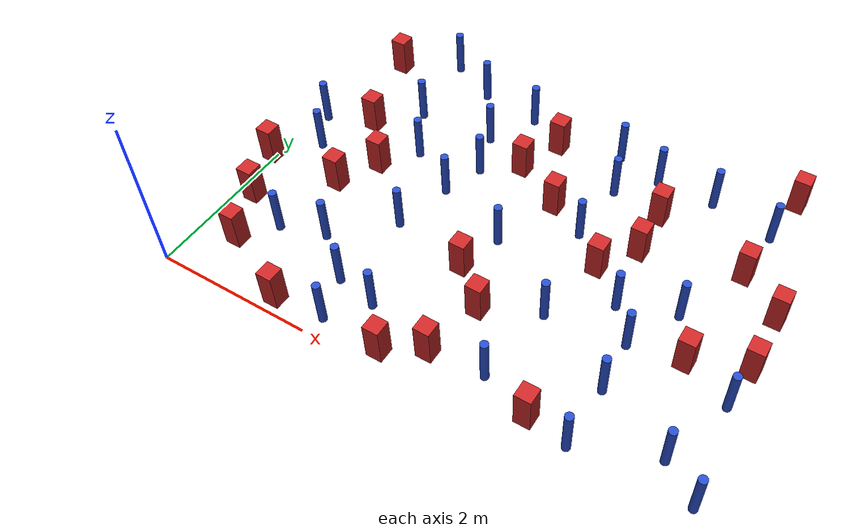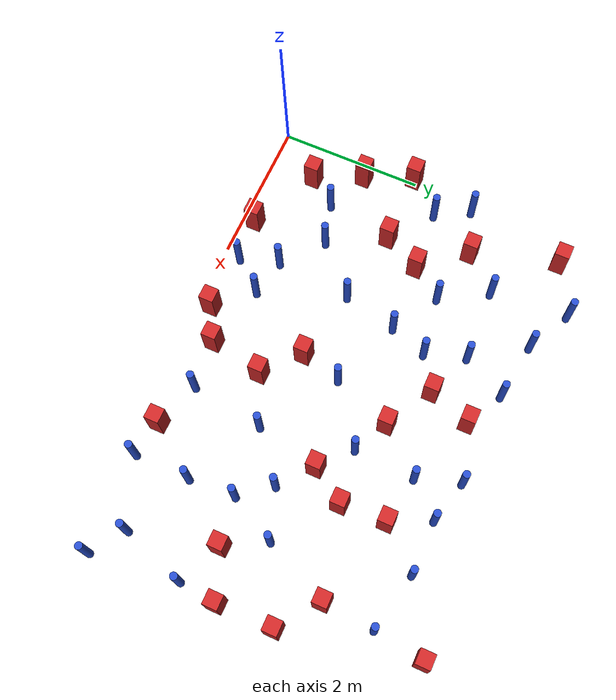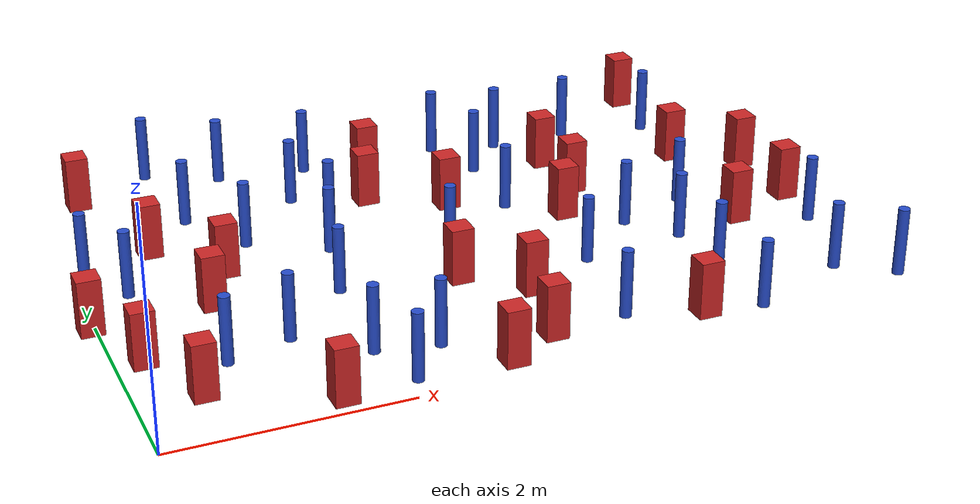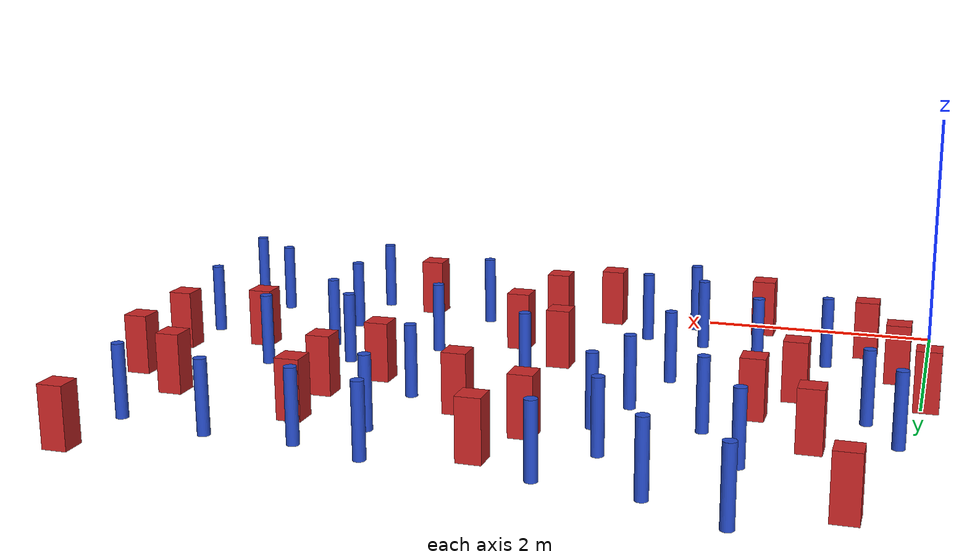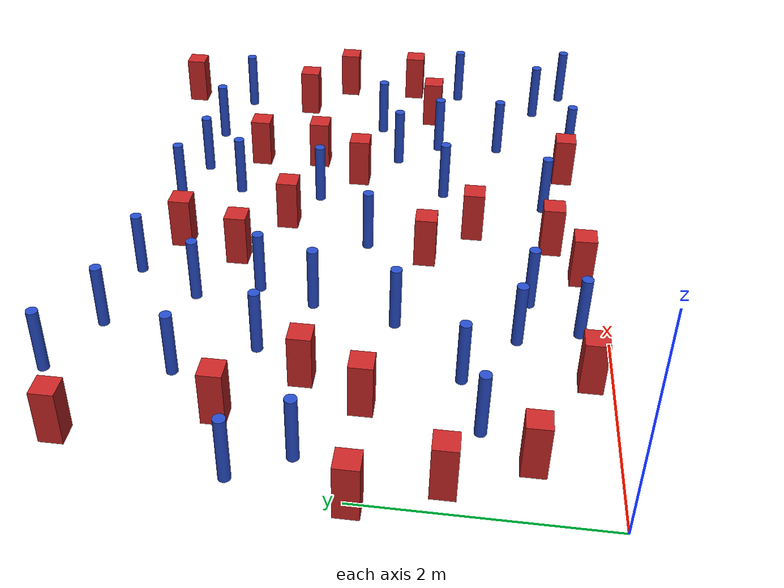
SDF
<sdf version="1.6">
 <model name="dense_41">
  <model name="pole_obstacle1">
   <static>true</static>
   <pose>3.98084149001 3.61252050977 7.38925637345e-09 -8.47170692796e-08 1.24976764765e-08 -1.74513093035e-07</pose>
   <link name="link">
    <pose>0 0 0.3 0 -0 0</pose>
    <inertial>
     <mass>1</mass>
     <inertia><ixx>0.145833</ixx><ixy>0</ixy><ixz>0</ixz><iyy>0.145833</iyy><iyz>0</iyz><izz>0.125</izz></inertia>
    </inertial>
    <collision name="collision">
     <geometry><cylinder><radius>0.05</radius><length>.6</length></cylinder></geometry>
    </collision>
    <visual name="visual">
     <geometry><cylinder><radius>0.05</radius><length>.6</length></cylinder></geometry>
     <material>
      <script><name>Gazebo/Blue</name><uri>file://media/materials/scripts/gazebo.material</uri></script>
     </material>
    </visual>
   </link>
  </model>
  <model name="pole_obstacle3">
   <static>true</static>
   <pose>5.4384488271 2.29469536156 7.38925637345e-09 -8.47170692798e-08 1.24976764937e-08 -1.74513093023e-07</pose>
   <link name="link">
    <pose>0 0 0.3 0 -0 0</pose>
    <inertial>
     <mass>1</mass>
     <inertia><ixx>0.145833</ixx><ixy>0</ixy><ixz>0</ixz><iyy>0.145833</iyy><iyz>0</iyz><izz>0.125</izz></inertia>
    </inertial>
    <collision name="collision">
     <geometry><cylinder><radius>0.05</radius><length>.6</length></cylinder></geometry>
    </collision>
    <visual name="visual">
     <geometry><cylinder><radius>0.05</radius><length>.6</length></cylinder></geometry>
     <material>
      <script><name>Gazebo/Blue</name><uri>file://media/materials/scripts/gazebo.material</uri></script>
     </material>
    </visual>
   </link>
  </model>
  <model name="square_post_obstacle5">
   <static>true</static>
   <pose>0.736631532644 3.10345573629 1.91545236811e-07 -7.35059704564e-06 1.12565212e-07 2.39332434364e-05</pose>
   <link name="link">
    <pose>0 0 0.25 0 -0 0</pose>
    <inertial>
     <mass>100</mass>
     <inertia>
      <ixx>0.166667</ixx>
      <ixy>0</ixy>
      <ixz>0</ixz>
      <iyy>0.166667</iyy>
      <iyz>0</iyz>
      <izz>0.166667</izz>
     </inertia>
    </inertial>
    <collision name="collision"><geometry><box><size>.2 .2 .5</size></box></geometry></collision>
    <visual name="visual">
     <geometry><box><size>.2 .2 .5</size></box></geometry>
     <material>
      <script><name>Gazebo/Red</name><uri>file://media/materials/scripts/gazebo.material</uri></script>
     </material>
    </visual>
   </link>
  </model>
  <model name="pole_obstacle8">
   <static>true</static>
   <pose>4.77809851453 2.05592720037 7.38925637345e-09 -8.47170692798e-08 1.24976764937e-08 -1.74513093023e-07</pose>
   <link name="link">
    <pose>0 0 0.3 0 -0 0</pose>
    <inertial>
     <mass>1</mass>
     <inertia><ixx>0.145833</ixx><ixy>0</ixy><ixz>0</ixz><iyy>0.145833</iyy><iyz>0</iyz><izz>0.125</izz></inertia>
    </inertial>
    <collision name="collision">
     <geometry><cylinder><radius>0.05</radius><length>.6</length></cylinder></geometry>
    </collision>
    <visual name="visual">
     <geometry><cylinder><radius>0.05</radius><length>.6</length></cylinder></geometry>
     <material>
      <script><name>Gazebo/Blue</name><uri>file://media/materials/scripts/gazebo.material</uri></script>
     </material>
    </visual>
   </link>
  </model>
  <model name="pole_obstacle10">
   <static>true</static>
   <pose>1.70992750119 4.33603272903 7.38925637345e-09 -8.47170692799e-08 1.24976765033e-08 -1.74513093018e-07</pose>
   <link name="link">
    <pose>0 0 0.3 0 -0 0</pose>
    <inertial>
     <mass>1</mass>
     <inertia><ixx>0.145833</ixx><ixy>0</ixy><ixz>0</ixz><iyy>0.145833</iyy><iyz>0</iyz><izz>0.125</izz></inertia>
    </inertial>
    <collision name="collision">
     <geometry><cylinder><radius>0.05</radius><length>.6</length></cylinder></geometry>
    </collision>
    <visual name="visual">
     <geometry><cylinder><radius>0.05</radius><length>.6</length></cylinder></geometry>
     <material>
      <script><name>Gazebo/Blue</name><uri>file://media/materials/scripts/gazebo.material</uri></script>
     </material>
    </visual>
   </link>
  </model>
  <model name="pole_obstacle11">
   <static>true</static>
   <pose>1.08762359171 4.64439114261 7.38925637345e-09 -8.47170692799e-08 1.24976765033e-08 -1.74513093018e-07</pose>
   <link name="link">
    <pose>0 0 0.3 0 -0 0</pose>
    <inertial>
     <mass>1</mass>
     <inertia><ixx>0.145833</ixx><ixy>0</ixy><ixz>0</ixz><iyy>0.145833</iyy><iyz>0</iyz><izz>0.125</izz></inertia>
    </inertial>
    <collision name="collision">
     <geometry><cylinder><radius>0.05</radius><length>.6</length></cylinder></geometry>
    </collision>
    <visual name="visual">
     <geometry><cylinder><radius>0.05</radius><length>.6</length></cylinder></geometry>
     <material>
      <script><name>Gazebo/Blue</name><uri>file://media/materials/scripts/gazebo.material</uri></script>
     </material>
    </visual>
   </link>
  </model>
  <model name="square_post_obstacle27">
   <static>true</static>
   <pose>3.01187125218 1.64211949032 1.91545236811e-07 -7.35059704564e-06 1.12565212e-07 2.39332434364e-05</pose>
   <link name="link">
    <pose>0 0 0.25 0 -0 0</pose>
    <inertial>
     <mass>100</mass>
     <inertia>
      <ixx>0.166667</ixx>
      <ixy>0</ixy>
      <ixz>0</ixz>
      <iyy>0.166667</iyy>
      <iyz>0</iyz>
      <izz>0.166667</izz>
     </inertia>
    </inertial>
    <collision name="collision"><geometry><box><size>.2 .2 .5</size></box></geometry></collision>
    <visual name="visual">
     <geometry><box><size>.2 .2 .5</size></box></geometry>
     <material>
      <script><name>Gazebo/Red</name><uri>file://media/materials/scripts/gazebo.material</uri></script>
     </material>
    </visual>
   </link>
  </model>
  <model name="pole_obstacle20">
   <static>true</static>
   <pose>4.3760066803 4.04789300603 7.38925637345e-09 -8.47170692797e-08 1.24976764805e-08 -1.74513093031e-07</pose>
   <link name="link">
    <pose>0 0 0.3 0 -0 0</pose>
    <inertial>
     <mass>1</mass>
     <inertia><ixx>0.145833</ixx><ixy>0</ixy><ixz>0</ixz><iyy>0.145833</iyy><iyz>0</iyz><izz>0.125</izz></inertia>
    </inertial>
    <collision name="collision">
     <geometry><cylinder><radius>0.05</radius><length>.6</length></cylinder></geometry>
    </collision>
    <visual name="visual">
     <geometry><cylinder><radius>0.05</radius><length>.6</length></cylinder></geometry>
     <material>
      <script><name>Gazebo/Blue</name><uri>file://media/materials/scripts/gazebo.material</uri></script>
     </material>
    </visual>
   </link>
  </model>
  <model name="pole_obstacle23">
   <static>true</static>
   <pose>5.12781670834 0.2467637631 7.38925637345e-09 -8.471706928e-08 1.24976765136e-08 -1.74513093014e-07</pose>
   <link name="link">
    <pose>0 0 0.3 0 -0 0</pose>
    <inertial>
     <mass>1</mass>
     <inertia><ixx>0.145833</ixx><ixy>0</ixy><ixz>0</ixz><iyy>0.145833</iyy><iyz>0</iyz><izz>0.125</izz></inertia>
    </inertial>
    <collision name="collision">
     <geometry><cylinder><radius>0.05</radius><length>.6</length></cylinder></geometry>
    </collision>
    <visual name="visual">
     <geometry><cylinder><radius>0.05</radius><length>.6</length></cylinder></geometry>
     <material>
      <script><name>Gazebo/Blue</name><uri>file://media/materials/scripts/gazebo.material</uri></script>
     </material>
    </visual>
   </link>
  </model>
  <model name="pole_obstacle32">
   <static>true</static>
   <pose>3.78894810011 4.19484692477 7.38925637345e-09 -8.47170692798e-08 1.24976765033e-08 -1.74513093019e-07</pose>
   <link name="link">
    <pose>0 0 0.3 0 -0 0</pose>
    <inertial>
     <mass>1</mass>
     <inertia><ixx>0.145833</ixx><ixy>0</ixy><ixz>0</ixz><iyy>0.145833</iyy><iyz>0</iyz><izz>0.125</izz></inertia>
    </inertial>
    <collision name="collision">
     <geometry><cylinder><radius>0.05</radius><length>.6</length></cylinder></geometry>
    </collision>
    <visual name="visual">
     <geometry><cylinder><radius>0.05</radius><length>.6</length></cylinder></geometry>
     <material>
      <script><name>Gazebo/Blue</name><uri>file://media/materials/scripts/gazebo.material</uri></script>
     </material>
    </visual>
   </link>
  </model>
  <model name="pole_obstacle37">
   <static>true</static>
   <pose>6.03336174047 0.614249148344 7.38925637345e-09 -8.47170692799e-08 1.24976765038e-08 -1.74513093018e-07</pose>
   <link name="link">
    <pose>0 0 0.3 0 -0 0</pose>
    <inertial>
     <mass>1</mass>
     <inertia><ixx>0.145833</ixx><ixy>0</ixy><ixz>0</ixz><iyy>0.145833</iyy><iyz>0</iyz><izz>0.125</izz></inertia>
    </inertial>
    <collision name="collision">
     <geometry><cylinder><radius>0.05</radius><length>.6</length></cylinder></geometry>
    </collision>
    <visual name="visual">
     <geometry><cylinder><radius>0.05</radius><length>.6</length></cylinder></geometry>
     <material>
      <script><name>Gazebo/Blue</name><uri>file://media/materials/scripts/gazebo.material</uri></script>
     </material>
    </visual>
   </link>
  </model>
  <model name="square_post_obstacle40">
   <static>true</static>
   <pose>2.87584545086 0.209195646803 1.91545236811e-07 -7.35059704564e-06 1.12565212e-07 2.39332434364e-05</pose>
   <link name="link">
    <pose>0 0 0.25 0 -0 0</pose>
    <inertial>
     <mass>100</mass>
     <inertia>
      <ixx>0.166667</ixx>
      <ixy>0</ixy>
      <ixz>0</ixz>
      <iyy>0.166667</iyy>
      <iyz>0</iyz>
      <izz>0.166667</izz>
     </inertia>
    </inertial>
    <collision name="collision"><geometry><box><size>.2 .2 .5</size></box></geometry></collision>
    <visual name="visual">
     <geometry><box><size>.2 .2 .5</size></box></geometry>
     <material>
      <script><name>Gazebo/Red</name><uri>file://media/materials/scripts/gazebo.material</uri></script>
     </material>
    </visual>
   </link>
  </model>
  <model name="pole_obstacle46">
   <static>true</static>
   <pose>1.55291161137 2.94590011978 7.38925637345e-09 -8.47170692799e-08 1.24976765053e-08 -1.74513093017e-07</pose>
   <link name="link">
    <pose>0 0 0.3 0 -0 0</pose>
    <inertial>
     <mass>1</mass>
     <inertia><ixx>0.145833</ixx><ixy>0</ixy><ixz>0</ixz><iyy>0.145833</iyy><iyz>0</iyz><izz>0.125</izz></inertia>
    </inertial>
    <collision name="collision">
     <geometry><cylinder><radius>0.05</radius><length>.6</length></cylinder></geometry>
    </collision>
    <visual name="visual">
     <geometry><cylinder><radius>0.05</radius><length>.6</length></cylinder></geometry>
     <material>
      <script><name>Gazebo/Blue</name><uri>file://media/materials/scripts/gazebo.material</uri></script>
     </material>
    </visual>
   </link>
  </model>
  <model name="square_post_obstacle50">
   <static>true</static>
   <pose>5.73080261002 1.75885919843 1.91545236811e-07 -7.35059704564e-06 1.12565212e-07 2.39332434364e-05</pose>
   <link name="link">
    <pose>0 0 0.25 0 -0 0</pose>
    <inertial>
     <mass>100</mass>
     <inertia>
      <ixx>0.166667</ixx>
      <ixy>0</ixy>
      <ixz>0</ixz>
      <iyy>0.166667</iyy>
      <iyz>0</iyz>
      <izz>0.166667</izz>
     </inertia>
    </inertial>
    <collision name="collision"><geometry><box><size>.2 .2 .5</size></box></geometry></collision>
    <visual name="visual">
     <geometry><box><size>.2 .2 .5</size></box></geometry>
     <material>
      <script><name>Gazebo/Red</name><uri>file://media/materials/scripts/gazebo.material</uri></script>
     </material>
    </visual>
   </link>
  </model>
  <model name="square_post_obstacle61">
   <static>true</static>
   <pose>0.520919279902 0.651713657295 1.91545236811e-07 -7.35059704564e-06 1.12565212e-07 2.39332434364e-05</pose>
   <link name="link">
    <pose>0 0 0.25 0 -0 0</pose>
    <inertial>
     <mass>100</mass>
     <inertia>
      <ixx>0.166667</ixx>
      <ixy>0</ixy>
      <ixz>0</ixz>
      <iyy>0.166667</iyy>
      <iyz>0</iyz>
      <izz>0.166667</izz>
     </inertia>
    </inertial>
    <collision name="collision"><geometry><box><size>.2 .2 .5</size></box></geometry></collision>
    <visual name="visual">
     <geometry><box><size>.2 .2 .5</size></box></geometry>
     <material>
      <script><name>Gazebo/Red</name><uri>file://media/materials/scripts/gazebo.material</uri></script>
     </material>
    </visual>
   </link>
  </model>
  <model name="square_post_obstacle63">
   <static>true</static>
   <pose>4.6258231345 3.51111614195 1.91545236811e-07 -7.35059704564e-06 1.12565212e-07 2.39332434364e-05</pose>
   <link name="link">
    <pose>0 0 0.25 0 -0 0</pose>
    <inertial>
     <mass>100</mass>
     <inertia>
      <ixx>0.166667</ixx>
      <ixy>0</ixy>
      <ixz>0</ixz>
      <iyy>0.166667</iyy>
      <iyz>0</iyz>
      <izz>0.166667</izz>
     </inertia>
    </inertial>
    <collision name="collision"><geometry><box><size>.2 .2 .5</size></box></geometry></collision>
    <visual name="visual">
     <geometry><box><size>.2 .2 .5</size></box></geometry>
     <material>
      <script><name>Gazebo/Red</name><uri>file://media/materials/scripts/gazebo.material</uri></script>
     </material>
    </visual>
   </link>
  </model>
  <model name="pole_obstacle63">
   <static>true</static>
   <pose>1.93131905964 0.776335240626 7.38925637345e-09 -8.47170692799e-08 1.24976765075e-08 -1.74513093017e-07</pose>
   <link name="link">
    <pose>0 0 0.3 0 -0 0</pose>
    <inertial>
     <mass>1</mass>
     <inertia><ixx>0.145833</ixx><ixy>0</ixy><ixz>0</ixz><iyy>0.145833</iyy><iyz>0</iyz><izz>0.125</izz></inertia>
    </inertial>
    <collision name="collision">
     <geometry><cylinder><radius>0.05</radius><length>.6</length></cylinder></geometry>
    </collision>
    <visual name="visual">
     <geometry><cylinder><radius>0.05</radius><length>.6</length></cylinder></geometry>
     <material>
      <script><name>Gazebo/Blue</name><uri>file://media/materials/scripts/gazebo.material</uri></script>
     </material>
    </visual>
   </link>
  </model>
  <model name="square_post_obstacle70">
   <static>true</static>
   <pose>2.8143383901 3.38059318408 1.91545236811e-07 -7.35059704564e-06 1.12565212e-07 2.39332434364e-05</pose>
   <link name="link">
    <pose>0 0 0.25 0 -0 0</pose>
    <inertial>
     <mass>100</mass>
     <inertia>
      <ixx>0.166667</ixx>
      <ixy>0</ixy>
      <ixz>0</ixz>
      <iyy>0.166667</iyy>
      <iyz>0</iyz>
      <izz>0.166667</izz>
     </inertia>
    </inertial>
    <collision name="collision"><geometry><box><size>.2 .2 .5</size></box></geometry></collision>
    <visual name="visual">
     <geometry><box><size>.2 .2 .5</size></box></geometry>
     <material>
      <script><name>Gazebo/Red</name><uri>file://media/materials/scripts/gazebo.material</uri></script>
     </material>
    </visual>
   </link>
  </model>
  <model name="square_post_obstacle74">
   <static>true</static>
   <pose>3.01948055152 3.96242440324 1.91545236811e-07 -7.35059704564e-06 1.12565212e-07 2.39332434364e-05</pose>
   <link name="link">
    <pose>0 0 0.25 0 -0 0</pose>
    <inertial>
     <mass>100</mass>
     <inertia>
      <ixx>0.166667</ixx>
      <ixy>0</ixy>
      <ixz>0</ixz>
      <iyy>0.166667</iyy>
      <iyz>0</iyz>
      <izz>0.166667</izz>
     </inertia>
    </inertial>
    <collision name="collision"><geometry><box><size>.2 .2 .5</size></box></geometry></collision>
    <visual name="visual">
     <geometry><box><size>.2 .2 .5</size></box></geometry>
     <material>
      <script><name>Gazebo/Red</name><uri>file://media/materials/scripts/gazebo.material</uri></script>
     </material>
    </visual>
   </link>
  </model>
  <model name="pole_obstacle72">
   <static>true</static>
   <pose>2.02041794109 1.82717027471 7.38925637345e-09 -8.471706928e-08 1.24976765091e-08 -1.74513093016e-07</pose>
   <link name="link">
    <pose>0 0 0.3 0 -0 0</pose>
    <inertial>
     <mass>1</mass>
     <inertia><ixx>0.145833</ixx><ixy>0</ixy><ixz>0</ixz><iyy>0.145833</iyy><iyz>0</iyz><izz>0.125</izz></inertia>
    </inertial>
    <collision name="collision">
     <geometry><cylinder><radius>0.05</radius><length>.6</length></cylinder></geometry>
    </collision>
    <visual name="visual">
     <geometry><cylinder><radius>0.05</radius><length>.6</length></cylinder></geometry>
     <material>
      <script><name>Gazebo/Blue</name><uri>file://media/materials/scripts/gazebo.material</uri></script>
     </material>
    </visual>
   </link>
  </model>
  <model name="pole_obstacle85">
   <static>true</static>
   <pose>6.3256194911 1.49275839835 7.38925637345e-09 -8.471706928e-08 1.24976765134e-08 -1.74513093015e-07</pose>
   <link name="link">
    <pose>0 0 0.3 0 -0 0</pose>
    <inertial>
     <mass>1</mass>
     <inertia><ixx>0.145833</ixx><ixy>0</ixy><ixz>0</ixz><iyy>0.145833</iyy><iyz>0</iyz><izz>0.125</izz></inertia>
    </inertial>
    <collision name="collision">
     <geometry><cylinder><radius>0.05</radius><length>.6</length></cylinder></geometry>
    </collision>
    <visual name="visual">
     <geometry><cylinder><radius>0.05</radius><length>.6</length></cylinder></geometry>
     <material>
      <script><name>Gazebo/Blue</name><uri>file://media/materials/scripts/gazebo.material</uri></script>
     </material>
    </visual>
   </link>
  </model>
  <model name="pole_obstacle91">
   <static>true</static>
   <pose>5.89141662045 3.88491265827 7.38925637345e-09 -8.47170692798e-08 1.24976764937e-08 -1.74513093023e-07</pose>
   <link name="link">
    <pose>0 0 0.3 0 -0 0</pose>
    <inertial>
     <mass>1</mass>
     <inertia><ixx>0.145833</ixx><ixy>0</ixy><ixz>0</ixz><iyy>0.145833</iyy><iyz>0</iyz><izz>0.125</izz></inertia>
    </inertial>
    <collision name="collision">
     <geometry><cylinder><radius>0.05</radius><length>.6</length></cylinder></geometry>
    </collision>
    <visual name="visual">
     <geometry><cylinder><radius>0.05</radius><length>.6</length></cylinder></geometry>
     <material>
      <script><name>Gazebo/Blue</name><uri>file://media/materials/scripts/gazebo.material</uri></script>
     </material>
    </visual>
   </link>
  </model>
  <model name="pole_obstacle105">
   <static>true</static>
   <pose>1.38970534248 1.21991986452 7.38925637345e-09 -8.471706928e-08 1.24976765079e-08 -1.74513093017e-07</pose>
   <link name="link">
    <pose>0 0 0.3 0 -0 0</pose>
    <inertial>
     <mass>1</mass>
     <inertia><ixx>0.145833</ixx><ixy>0</ixy><ixz>0</ixz><iyy>0.145833</iyy><iyz>0</iyz><izz>0.125</izz></inertia>
    </inertial>
    <collision name="collision">
     <geometry><cylinder><radius>0.05</radius><length>.6</length></cylinder></geometry>
    </collision>
    <visual name="visual">
     <geometry><cylinder><radius>0.05</radius><length>.6</length></cylinder></geometry>
     <material>
      <script><name>Gazebo/Blue</name><uri>file://media/materials/scripts/gazebo.material</uri></script>
     </material>
    </visual>
   </link>
  </model>
  <model name="square_post_obstacle98">
   <static>true</static>
   <pose>0.224005041341 1.29898336397 1.91545236811e-07 -7.35059704564e-06 1.12565212e-07 2.39332434364e-05</pose>
   <link name="link">
    <pose>0 0 0.25 0 -0 0</pose>
    <inertial>
     <mass>100</mass>
     <inertia>
      <ixx>0.166667</ixx>
      <ixy>0</ixy>
      <ixz>0</ixz>
      <iyy>0.166667</iyy>
      <iyz>0</iyz>
      <izz>0.166667</izz>
     </inertia>
    </inertial>
    <collision name="collision"><geometry><box><size>.2 .2 .5</size></box></geometry></collision>
    <visual name="visual">
     <geometry><box><size>.2 .2 .5</size></box></geometry>
     <material>
      <script><name>Gazebo/Red</name><uri>file://media/materials/scripts/gazebo.material</uri></script>
     </material>
    </visual>
   </link>
  </model>
  <model name="pole_obstacle115">
   <static>true</static>
   <pose>4.00736310543 0.528504930025 7.38925637345e-09 -8.471706928e-08 1.2497676511e-08 -1.74513093016e-07</pose>
   <link name="link">
    <pose>0 0 0.3 0 -0 0</pose>
    <inertial>
     <mass>1</mass>
     <inertia><ixx>0.145833</ixx><ixy>0</ixy><ixz>0</ixz><iyy>0.145833</iyy><iyz>0</iyz><izz>0.125</izz></inertia>
    </inertial>
    <collision name="collision">
     <geometry><cylinder><radius>0.05</radius><length>.6</length></cylinder></geometry>
    </collision>
    <visual name="visual">
     <geometry><cylinder><radius>0.05</radius><length>.6</length></cylinder></geometry>
     <material>
      <script><name>Gazebo/Blue</name><uri>file://media/materials/scripts/gazebo.material</uri></script>
     </material>
    </visual>
   </link>
  </model>
  <model name="square_post_obstacle105">
   <static>true</static>
   <pose>1.23904430566 2.5087768517 1.91545236811e-07 -7.35059704564e-06 1.12565212e-07 2.39332434364e-05</pose>
   <link name="link">
    <pose>0 0 0.25 0 -0 0</pose>
    <inertial>
     <mass>100</mass>
     <inertia>
      <ixx>0.166667</ixx>
      <ixy>0</ixy>
      <ixz>0</ixz>
      <iyy>0.166667</iyy>
      <iyz>0</iyz>
      <izz>0.166667</izz>
     </inertia>
    </inertial>
    <collision name="collision"><geometry><box><size>.2 .2 .5</size></box></geometry></collision>
    <visual name="visual">
     <geometry><box><size>.2 .2 .5</size></box></geometry>
     <material>
      <script><name>Gazebo/Red</name><uri>file://media/materials/scripts/gazebo.material</uri></script>
     </material>
    </visual>
   </link>
  </model>
  <model name="square_post_obstacle113">
   <static>true</static>
   <pose>-0.0370448958904 1.95982716786 1.91545236811e-07 -7.35059704564e-06 1.12565212e-07 2.39332434364e-05</pose>
   <link name="link">
    <pose>0 0 0.25 0 -0 0</pose>
    <inertial>
     <mass>100</mass>
     <inertia>
      <ixx>0.166667</ixx>
      <ixy>0</ixy>
      <ixz>0</ixz>
      <iyy>0.166667</iyy>
      <iyz>0</iyz>
      <izz>0.166667</izz>
     </inertia>
    </inertial>
    <collision name="collision"><geometry><box><size>.2 .2 .5</size></box></geometry></collision>
    <visual name="visual">
     <geometry><box><size>.2 .2 .5</size></box></geometry>
     <material>
      <script><name>Gazebo/Red</name><uri>file://media/materials/scripts/gazebo.material</uri></script>
     </material>
    </visual>
   </link>
  </model>
  <model name="pole_obstacle133">
   <static>true</static>
   <pose>3.16274019417 2.19906786334 7.38925637345e-09 -8.47170692798e-08 1.24976764939e-08 -1.74513093025e-07</pose>
   <link name="link">
    <pose>0 0 0.3 0 -0 0</pose>
    <inertial>
     <mass>1</mass>
     <inertia><ixx>0.145833</ixx><ixy>0</ixy><ixz>0</ixz><iyy>0.145833</iyy><iyz>0</iyz><izz>0.125</izz></inertia>
    </inertial>
    <collision name="collision">
     <geometry><cylinder><radius>0.05</radius><length>.6</length></cylinder></geometry>
    </collision>
    <visual name="visual">
     <geometry><cylinder><radius>0.05</radius><length>.6</length></cylinder></geometry>
     <material>
      <script><name>Gazebo/Blue</name><uri>file://media/materials/scripts/gazebo.material</uri></script>
     </material>
    </visual>
   </link>
  </model>
  <model name="square_post_obstacle120">
   <static>true</static>
   <pose>4.65402330186 2.88882644161 1.91545236811e-07 -7.35059704564e-06 1.12565212e-07 2.39332434364e-05</pose>
   <link name="link">
    <pose>0 0 0.25 0 -0 0</pose>
    <inertial>
     <mass>100</mass>
     <inertia>
      <ixx>0.166667</ixx>
      <ixy>0</ixy>
      <ixz>0</ixz>
      <iyy>0.166667</iyy>
      <iyz>0</iyz>
      <izz>0.166667</izz>
     </inertia>
    </inertial>
    <collision name="collision"><geometry><box><size>.2 .2 .5</size></box></geometry></collision>
    <visual name="visual">
     <geometry><box><size>.2 .2 .5</size></box></geometry>
     <material>
      <script><name>Gazebo/Red</name><uri>file://media/materials/scripts/gazebo.material</uri></script>
     </material>
    </visual>
   </link>
  </model>
  <model name="square_post_obstacle121">
   <static>true</static>
   <pose>4.62570567041 0.323611549352 1.91545236811e-07 -7.35059704564e-06 1.12565212e-07 2.39332434364e-05</pose>
   <link name="link">
    <pose>0 0 0.25 0 -0 0</pose>
    <inertial>
     <mass>100</mass>
     <inertia>
      <ixx>0.166667</ixx>
      <ixy>0</ixy>
      <ixz>0</ixz>
      <iyy>0.166667</iyy>
      <iyz>0</iyz>
      <izz>0.166667</izz>
     </inertia>
    </inertial>
    <collision name="collision"><geometry><box><size>.2 .2 .5</size></box></geometry></collision>
    <visual name="visual">
     <geometry><box><size>.2 .2 .5</size></box></geometry>
     <material>
      <script><name>Gazebo/Red</name><uri>file://media/materials/scripts/gazebo.material</uri></script>
     </material>
    </visual>
   </link>
  </model>
  <model name="square_post_obstacle123">
   <static>true</static>
   <pose>3.49149145456 1.2186937029 1.91545236811e-07 -7.35059704564e-06 1.12565212e-07 2.39332434364e-05</pose>
   <link name="link">
    <pose>0 0 0.25 0 -0 0</pose>
    <inertial>
     <mass>100</mass>
     <inertia>
      <ixx>0.166667</ixx>
      <ixy>0</ixy>
      <ixz>0</ixz>
      <iyy>0.166667</iyy>
      <iyz>0</iyz>
      <izz>0.166667</izz>
     </inertia>
    </inertial>
    <collision name="collision"><geometry><box><size>.2 .2 .5</size></box></geometry></collision>
    <visual name="visual">
     <geometry><box><size>.2 .2 .5</size></box></geometry>
     <material>
      <script><name>Gazebo/Red</name><uri>file://media/materials/scripts/gazebo.material</uri></script>
     </material>
    </visual>
   </link>
  </model>
  <model name="square_post_obstacle124">
   <static>true</static>
   <pose>0.38210762863 4.27593714718 1.91545236811e-07 -7.35059704564e-06 1.12565212e-07 2.39332434364e-05</pose>
   <link name="link">
    <pose>0 0 0.25 0 -0 0</pose>
    <inertial>
     <mass>100</mass>
     <inertia>
      <ixx>0.166667</ixx>
      <ixy>0</ixy>
      <ixz>0</ixz>
      <iyy>0.166667</iyy>
      <iyz>0</iyz>
      <izz>0.166667</izz>
     </inertia>
    </inertial>
    <collision name="collision"><geometry><box><size>.2 .2 .5</size></box></geometry></collision>
    <visual name="visual">
     <geometry><box><size>.2 .2 .5</size></box></geometry>
     <material>
      <script><name>Gazebo/Red</name><uri>file://media/materials/scripts/gazebo.material</uri></script>
     </material>
    </visual>
   </link>
  </model>
  <model name="square_post_obstacle129">
   <static>true</static>
   <pose>0.975659641595 1.98723004951 1.91545236811e-07 -7.35059704564e-06 1.12565212e-07 2.39332434364e-05</pose>
   <link name="link">
    <pose>0 0 0.25 0 -0 0</pose>
    <inertial>
     <mass>100</mass>
     <inertia>
      <ixx>0.166667</ixx>
      <ixy>0</ixy>
      <ixz>0</ixz>
      <iyy>0.166667</iyy>
      <iyz>0</iyz>
      <izz>0.166667</izz>
     </inertia>
    </inertial>
    <collision name="collision"><geometry><box><size>.2 .2 .5</size></box></geometry></collision>
    <visual name="visual">
     <geometry><box><size>.2 .2 .5</size></box></geometry>
     <material>
      <script><name>Gazebo/Red</name><uri>file://media/materials/scripts/gazebo.material</uri></script>
     </material>
    </visual>
   </link>
  </model>
  <model name="square_post_obstacle130">
   <static>true</static>
   <pose>3.45976915127 3.0179653798 1.91545236811e-07 -7.35059704564e-06 1.12565212e-07 2.39332434364e-05</pose>
   <link name="link">
    <pose>0 0 0.25 0 -0 0</pose>
    <inertial>
     <mass>100</mass>
     <inertia>
      <ixx>0.166667</ixx>
      <ixy>0</ixy>
      <ixz>0</ixz>
      <iyy>0.166667</iyy>
      <iyz>0</iyz>
      <izz>0.166667</izz>
     </inertia>
    </inertial>
    <collision name="collision"><geometry><box><size>.2 .2 .5</size></box></geometry></collision>
    <visual name="visual">
     <geometry><box><size>.2 .2 .5</size></box></geometry>
     <material>
      <script><name>Gazebo/Red</name><uri>file://media/materials/scripts/gazebo.material</uri></script>
     </material>
    </visual>
   </link>
  </model>
  <model name="square_post_obstacle135">
   <static>true</static>
   <pose>5.83225883947 3.18259872906 1.91545236811e-07 -7.35059704564e-06 1.12565212e-07 2.39332434364e-05</pose>
   <link name="link">
    <pose>0 0 0.25 0 -0 0</pose>
    <inertial>
     <mass>100</mass>
     <inertia>
      <ixx>0.166667</ixx>
      <ixy>0</ixy>
      <ixz>0</ixz>
      <iyy>0.166667</iyy>
      <iyz>0</iyz>
      <izz>0.166667</izz>
     </inertia>
    </inertial>
    <collision name="collision"><geometry><box><size>.2 .2 .5</size></box></geometry></collision>
    <visual name="visual">
     <geometry><box><size>.2 .2 .5</size></box></geometry>
     <material>
      <script><name>Gazebo/Red</name><uri>file://media/materials/scripts/gazebo.material</uri></script>
     </material>
    </visual>
   </link>
  </model>
  <model name="pole_obstacle148">
   <static>true</static>
   <pose>2.19397522058 2.56956290892 7.38925637345e-09 -8.47170692798e-08 1.24976764939e-08 -1.74513093025e-07</pose>
   <link name="link">
    <pose>0 0 0.3 0 -0 0</pose>
    <inertial>
     <mass>1</mass>
     <inertia><ixx>0.145833</ixx><ixy>0</ixy><ixz>0</ixz><iyy>0.145833</iyy><iyz>0</iyz><izz>0.125</izz></inertia>
    </inertial>
    <collision name="collision">
     <geometry><cylinder><radius>0.05</radius><length>.6</length></cylinder></geometry>
    </collision>
    <visual name="visual">
     <geometry><cylinder><radius>0.05</radius><length>.6</length></cylinder></geometry>
     <material>
      <script><name>Gazebo/Blue</name><uri>file://media/materials/scripts/gazebo.material</uri></script>
     </material>
    </visual>
   </link>
  </model>
  <model name="pole_obstacle155">
   <static>true</static>
   <pose>1.18448545803 3.57925829598 7.38925637345e-09 -8.47170692799e-08 1.24976765053e-08 -1.74513093017e-07</pose>
   <link name="link">
    <pose>0 0 0.3 0 -0 0</pose>
    <inertial>
     <mass>1</mass>
     <inertia><ixx>0.145833</ixx><ixy>0</ixy><ixz>0</ixz><iyy>0.145833</iyy><iyz>0</iyz><izz>0.125</izz></inertia>
    </inertial>
    <collision name="collision">
     <geometry><cylinder><radius>0.05</radius><length>.6</length></cylinder></geometry>
    </collision>
    <visual name="visual">
     <geometry><cylinder><radius>0.05</radius><length>.6</length></cylinder></geometry>
     <material>
      <script><name>Gazebo/Blue</name><uri>file://media/materials/scripts/gazebo.material</uri></script>
     </material>
    </visual>
   </link>
  </model>
  <model name="square_post_obstacle145">
   <static>true</static>
   <pose>6.37362215503 2.01728964469 1.91545236811e-07 -7.35059704564e-06 1.12565212e-07 2.39332434364e-05</pose>
   <link name="link">
    <pose>0 0 0.25 0 -0 0</pose>
    <inertial>
     <mass>100</mass>
     <inertia>
      <ixx>0.166667</ixx>
      <ixy>0</ixy>
      <ixz>0</ixz>
      <iyy>0.166667</iyy>
      <iyz>0</iyz>
      <izz>0.166667</izz>
     </inertia>
    </inertial>
    <collision name="collision"><geometry><box><size>.2 .2 .5</size></box></geometry></collision>
    <visual name="visual">
     <geometry><box><size>.2 .2 .5</size></box></geometry>
     <material>
      <script><name>Gazebo/Red</name><uri>file://media/materials/scripts/gazebo.material</uri></script>
     </material>
    </visual>
   </link>
  </model>
  <model name="pole_obstacle165">
   <static>true</static>
   <pose>5.10457310444 1.64807526347 7.38925637345e-09 -8.471706928e-08 1.24976765134e-08 -1.74513093015e-07</pose>
   <link name="link">
    <pose>0 0 0.3 0 -0 0</pose>
    <inertial>
     <mass>1</mass>
     <inertia><ixx>0.145833</ixx><ixy>0</ixy><ixz>0</ixz><iyy>0.145833</iyy><iyz>0</iyz><izz>0.125</izz></inertia>
    </inertial>
    <collision name="collision">
     <geometry><cylinder><radius>0.05</radius><length>.6</length></cylinder></geometry>
    </collision>
    <visual name="visual">
     <geometry><cylinder><radius>0.05</radius><length>.6</length></cylinder></geometry>
     <material>
      <script><name>Gazebo/Blue</name><uri>file://media/materials/scripts/gazebo.material</uri></script>
     </material>
    </visual>
   </link>
  </model>
  <model name="square_post_obstacle158">
   <static>true</static>
   <pose>4.34555970811 2.42175448457 1.91545236811e-07 -7.35059704564e-06 1.12565212e-07 2.39332434364e-05</pose>
   <link name="link">
    <pose>0 0 0.25 0 -0 0</pose>
    <inertial>
     <mass>100</mass>
     <inertia>
      <ixx>0.166667</ixx>
      <ixy>0</ixy>
      <ixz>0</ixz>
      <iyy>0.166667</iyy>
      <iyz>0</iyz>
      <izz>0.166667</izz>
     </inertia>
    </inertial>
    <collision name="collision"><geometry><box><size>.2 .2 .5</size></box></geometry></collision>
    <visual name="visual">
     <geometry><box><size>.2 .2 .5</size></box></geometry>
     <material>
      <script><name>Gazebo/Red</name><uri>file://media/materials/scripts/gazebo.material</uri></script>
     </material>
    </visual>
   </link>
  </model>
  <model name="pole_obstacle174">
   <static>true</static>
   <pose>6.46815128285 0.300603092539 7.38925637345e-09 -8.47170692798e-08 1.24976765003e-08 -1.7451309302e-07</pose>
   <link name="link">
    <pose>0 0 0.3 0 -0 0</pose>
    <inertial>
     <mass>1</mass>
     <inertia><ixx>0.145833</ixx><ixy>0</ixy><ixz>0</ixz><iyy>0.145833</iyy><iyz>0</iyz><izz>0.125</izz></inertia>
    </inertial>
    <collision name="collision">
     <geometry><cylinder><radius>0.05</radius><length>.6</length></cylinder></geometry>
    </collision>
    <visual name="visual">
     <geometry><cylinder><radius>0.05</radius><length>.6</length></cylinder></geometry>
     <material>
      <script><name>Gazebo/Blue</name><uri>file://media/materials/scripts/gazebo.material</uri></script>
     </material>
    </visual>
   </link>
  </model>
  <model name="pole_obstacle183">
   <static>true</static>
   <pose>5.10223335983 4.04952868877 7.38925637345e-09 -8.47170692797e-08 1.24976764805e-08 -1.74513093031e-07</pose>
   <link name="link">
    <pose>0 0 0.3 0 -0 0</pose>
    <inertial>
     <mass>1</mass>
     <inertia><ixx>0.145833</ixx><ixy>0</ixy><ixz>0</ixz><iyy>0.145833</iyy><iyz>0</iyz><izz>0.125</izz></inertia>
    </inertial>
    <collision name="collision">
     <geometry><cylinder><radius>0.05</radius><length>.6</length></cylinder></geometry>
    </collision>
    <visual name="visual">
     <geometry><cylinder><radius>0.05</radius><length>.6</length></cylinder></geometry>
     <material>
      <script><name>Gazebo/Blue</name><uri>file://media/materials/scripts/gazebo.material</uri></script>
     </material>
    </visual>
   </link>
  </model>
  <model name="square_post_obstacle176">
   <static>true</static>
   <pose>5.97770674832 4.5587330106 1.91545236811e-07 -7.35059704564e-06 1.12565212e-07 2.39332434364e-05</pose>
   <link name="link">
    <pose>0 0 0.25 0 -0 0</pose>
    <inertial>
     <mass>100</mass>
     <inertia>
      <ixx>0.166667</ixx>
      <ixy>0</ixy>
      <ixz>0</ixz>
      <iyy>0.166667</iyy>
      <iyz>0</iyz>
      <izz>0.166667</izz>
     </inertia>
    </inertial>
    <collision name="collision"><geometry><box><size>.2 .2 .5</size></box></geometry></collision>
    <visual name="visual">
     <geometry><box><size>.2 .2 .5</size></box></geometry>
     <material>
      <script><name>Gazebo/Red</name><uri>file://media/materials/scripts/gazebo.material</uri></script>
     </material>
    </visual>
   </link>
  </model>
  <model name="square_post_obstacle178">
   <static>true</static>
   <pose>6.35876259646 2.78207337924 1.91545236811e-07 -7.35059704564e-06 1.12565212e-07 2.39332434364e-05</pose>
   <link name="link">
    <pose>0 0 0.25 0 -0 0</pose>
    <inertial>
     <mass>100</mass>
     <inertia>
      <ixx>0.166667</ixx>
      <ixy>0</ixy>
      <ixz>0</ixz>
      <iyy>0.166667</iyy>
      <iyz>0</iyz>
      <izz>0.166667</izz>
     </inertia>
    </inertial>
    <collision name="collision"><geometry><box><size>.2 .2 .5</size></box></geometry></collision>
    <visual name="visual">
     <geometry><box><size>.2 .2 .5</size></box></geometry>
     <material>
      <script><name>Gazebo/Red</name><uri>file://media/materials/scripts/gazebo.material</uri></script>
     </material>
    </visual>
   </link>
  </model>
  <model name="square_post_obstacle180">
   <static>true</static>
   <pose>1.47353914364 0.188988112197 1.91545236811e-07 -7.35059704564e-06 1.12565212e-07 2.39332434364e-05</pose>
   <link name="link">
    <pose>0 0 0.25 0 -0 0</pose>
    <inertial>
     <mass>100</mass>
     <inertia>
      <ixx>0.166667</ixx>
      <ixy>0</ixy>
      <ixz>0</ixz>
      <iyy>0.166667</iyy>
      <iyz>0</iyz>
      <izz>0.166667</izz>
     </inertia>
    </inertial>
    <collision name="collision"><geometry><box><size>.2 .2 .5</size></box></geometry></collision>
    <visual name="visual">
     <geometry><box><size>.2 .2 .5</size></box></geometry>
     <material>
      <script><name>Gazebo/Red</name><uri>file://media/materials/scripts/gazebo.material</uri></script>
     </material>
    </visual>
   </link>
  </model>
  <model name="square_post_obstacle197">
   <static>true</static>
   <pose>3.3317437777 0.470663351585 1.91545236811e-07 -7.35059704564e-06 1.12565212e-07 2.39332434364e-05</pose>
   <link name="link">
    <pose>0 0 0.25 0 -0 0</pose>
    <inertial>
     <mass>100</mass>
     <inertia>
      <ixx>0.166667</ixx>
      <ixy>0</ixy>
      <ixz>0</ixz>
      <iyy>0.166667</iyy>
      <iyz>0</iyz>
      <izz>0.166667</izz>
     </inertia>
    </inertial>
    <collision name="collision"><geometry><box><size>.2 .2 .5</size></box></geometry></collision>
    <visual name="visual">
     <geometry><box><size>.2 .2 .5</size></box></geometry>
     <material>
      <script><name>Gazebo/Red</name><uri>file://media/materials/scripts/gazebo.material</uri></script>
     </material>
    </visual>
   </link>
  </model>
  <model name="pole_obstacle199">
   <static>true</static>
   <pose>3.93787657504 2.77943659034 7.38925637345e-09 -8.47170692798e-08 1.24976764939e-08 -1.74513093025e-07</pose>
   <link name="link">
    <pose>0 0 0.3 0 -0 0</pose>
    <inertial>
     <mass>1</mass>
     <inertia><ixx>0.145833</ixx><ixy>0</ixy><ixz>0</ixz><iyy>0.145833</iyy><iyz>0</iyz><izz>0.125</izz></inertia>
    </inertial>
    <collision name="collision">
     <geometry><cylinder><radius>0.05</radius><length>.6</length></cylinder></geometry>
    </collision>
    <visual name="visual">
     <geometry><cylinder><radius>0.05</radius><length>.6</length></cylinder></geometry>
     <material>
      <script><name>Gazebo/Blue</name><uri>file://media/materials/scripts/gazebo.material</uri></script>
     </material>
    </visual>
   </link>
  </model>
  <model name="pole_obstacle209">
   <static>true</static>
   <pose>5.13895842581 1.01184223365 7.38925637345e-09 -8.47170692801e-08 1.24976765139e-08 -1.74513093014e-07</pose>
   <link name="link">
    <pose>0 0 0.3 0 -0 0</pose>
    <inertial>
     <mass>1</mass>
     <inertia><ixx>0.145833</ixx><ixy>0</ixy><ixz>0</ixz><iyy>0.145833</iyy><iyz>0</iyz><izz>0.125</izz></inertia>
    </inertial>
    <collision name="collision">
     <geometry><cylinder><radius>0.05</radius><length>.6</length></cylinder></geometry>
    </collision>
    <visual name="visual">
     <geometry><cylinder><radius>0.05</radius><length>.6</length></cylinder></geometry>
     <material>
      <script><name>Gazebo/Blue</name><uri>file://media/materials/scripts/gazebo.material</uri></script>
     </material>
    </visual>
   </link>
  </model>
  <model name="pole_obstacle215">
   <static>true</static>
   <pose>2.0935470157 0.244865106011 7.38925637345e-09 -8.471706928e-08 1.24976765149e-08 -1.74513093013e-07</pose>
   <link name="link">
    <pose>0 0 0.3 0 -0 0</pose>
    <inertial>
     <mass>1</mass>
     <inertia><ixx>0.145833</ixx><ixy>0</ixy><ixz>0</ixz><iyy>0.145833</iyy><iyz>0</iyz><izz>0.125</izz></inertia>
    </inertial>
    <collision name="collision">
     <geometry><cylinder><radius>0.05</radius><length>.6</length></cylinder></geometry>
    </collision>
    <visual name="visual">
     <geometry><cylinder><radius>0.05</radius><length>.6</length></cylinder></geometry>
     <material>
      <script><name>Gazebo/Blue</name><uri>file://media/materials/scripts/gazebo.material</uri></script>
     </material>
    </visual>
   </link>
  </model>
  <model name="pole_obstacle220">
   <static>true</static>
   <pose>2.1866387212 3.63370213755 7.38925637345e-09 -8.47170692798e-08 1.24976764939e-08 -1.74513093025e-07</pose>
   <link name="link">
    <pose>0 0 0.3 0 -0 0</pose>
    <inertial>
     <mass>1</mass>
     <inertia><ixx>0.145833</ixx><ixy>0</ixy><ixz>0</ixz><iyy>0.145833</iyy><iyz>0</iyz><izz>0.125</izz></inertia>
    </inertial>
    <collision name="collision">
     <geometry><cylinder><radius>0.05</radius><length>.6</length></cylinder></geometry>
    </collision>
    <visual name="visual">
     <geometry><cylinder><radius>0.05</radius><length>.6</length></cylinder></geometry>
     <material>
      <script><name>Gazebo/Blue</name><uri>file://media/materials/scripts/gazebo.material</uri></script>
     </material>
    </visual>
   </link>
  </model>
  <model name="pole_obstacle224">
   <static>true</static>
   <pose>0.825971334627 1.05004488468 7.38925637345e-09 -8.47170692799e-08 1.24976765033e-08 -1.7451309302e-07</pose>
   <link name="link">
    <pose>0 0 0.3 0 -0 0</pose>
    <inertial>
     <mass>1</mass>
     <inertia><ixx>0.145833</ixx><ixy>0</ixy><ixz>0</ixz><iyy>0.145833</iyy><iyz>0</iyz><izz>0.125</izz></inertia>
    </inertial>
    <collision name="collision">
     <geometry><cylinder><radius>0.05</radius><length>.6</length></cylinder></geometry>
    </collision>
    <visual name="visual">
     <geometry><cylinder><radius>0.05</radius><length>.6</length></cylinder></geometry>
     <material>
      <script><name>Gazebo/Blue</name><uri>file://media/materials/scripts/gazebo.material</uri></script>
     </material>
    </visual>
   </link>
  </model>
  <model name="pole_obstacle230">
   <static>true</static>
   <pose>2.45509000957 0.671740020781 7.38925637345e-09 -8.471706928e-08 1.24976765177e-08 -1.74513093012e-07</pose>
   <link name="link">
    <pose>0 0 0.3 0 -0 0</pose>
    <inertial>
     <mass>1</mass>
     <inertia><ixx>0.145833</ixx><ixy>0</ixy><ixz>0</ixz><iyy>0.145833</iyy><iyz>0</iyz><izz>0.125</izz></inertia>
    </inertial>
    <collision name="collision">
     <geometry><cylinder><radius>0.05</radius><length>.6</length></cylinder></geometry>
    </collision>
    <visual name="visual">
     <geometry><cylinder><radius>0.05</radius><length>.6</length></cylinder></geometry>
     <material>
      <script><name>Gazebo/Blue</name><uri>file://media/materials/scripts/gazebo.material</uri></script>
     </material>
    </visual>
   </link>
  </model>
  <model name="pole_obstacle232">
   <static>true</static>
   <pose>0.386239009575 2.42954002078 7.38925637345e-09 -8.47170692793e-08 1.24976764469e-08 -1.74513093038e-07</pose>
   <link name="link">
    <pose>0 0 0.3 0 -0 0</pose>
    <inertial>
     <mass>1</mass>
     <inertia><ixx>0.145833</ixx><ixy>0</ixy><ixz>0</ixz><iyy>0.145833</iyy><iyz>0</iyz><izz>0.125</izz></inertia>
    </inertial>
    <collision name="collision">
     <geometry><cylinder><radius>0.05</radius><length>.6</length></cylinder></geometry>
    </collision>
    <visual name="visual">
     <geometry><cylinder><radius>0.05</radius><length>.6</length></cylinder></geometry>
     <material>
      <script><name>Gazebo/Blue</name><uri>file://media/materials/scripts/gazebo.material</uri></script>
     </material>
    </visual>
   </link>
  </model>
  <model name="pole_obstacle233">
   <static>true</static>
   <pose>2.36867000957 3.08467002078 7.38925637345e-09 -8.47170692798e-08 1.24976764939e-08 -1.74513093025e-07</pose>
   <link name="link">
    <pose>0 0 0.3 0 -0 0</pose>
    <inertial>
     <mass>1</mass>
     <inertia><ixx>0.145833</ixx><ixy>0</ixy><ixz>0</ixz><iyy>0.145833</iyy><iyz>0</iyz><izz>0.125</izz></inertia>
    </inertial>
    <collision name="collision">
     <geometry><cylinder><radius>0.05</radius><length>.6</length></cylinder></geometry>
    </collision>
    <visual name="visual">
     <geometry><cylinder><radius>0.05</radius><length>.6</length></cylinder></geometry>
     <material>
      <script><name>Gazebo/Blue</name><uri>file://media/materials/scripts/gazebo.material</uri></script>
     </material>
    </visual>
   </link>
  </model>
  <model name="pole_obstacle235">
   <static>true</static>
   <pose>0.123707009575 2.89027002078 7.38925637345e-09 -8.47170692799e-08 1.24976765083e-08 -1.74513093017e-07</pose>
   <link name="link">
    <pose>0 0 0.3 0 -0 0</pose>
    <inertial>
     <mass>1</mass>
     <inertia><ixx>0.145833</ixx><ixy>0</ixy><ixz>0</ixz><iyy>0.145833</iyy><iyz>0</iyz><izz>0.125</izz></inertia>
    </inertial>
    <collision name="collision">
     <geometry><cylinder><radius>0.05</radius><length>.6</length></cylinder></geometry>
    </collision>
    <visual name="visual">
     <geometry><cylinder><radius>0.05</radius><length>.6</length></cylinder></geometry>
     <material>
      <script><name>Gazebo/Blue</name><uri>file://media/materials/scripts/gazebo.material</uri></script>
     </material>
    </visual>
   </link>
  </model>
  <model name="pole_obstacle237">
   <static>true</static>
   <pose>2.50551000957 4.23032002078 7.38925637345e-09 -8.47170692798e-08 1.24976765033e-08 -1.74513093019e-07</pose>
   <link name="link">
    <pose>0 0 0.3 0 -0 0</pose>
    <inertial>
     <mass>1</mass>
     <inertia><ixx>0.145833</ixx><ixy>0</ixy><ixz>0</ixz><iyy>0.145833</iyy><iyz>0</iyz><izz>0.125</izz></inertia>
    </inertial>
    <collision name="collision">
     <geometry><cylinder><radius>0.05</radius><length>.6</length></cylinder></geometry>
    </collision>
    <visual name="visual">
     <geometry><cylinder><radius>0.05</radius><length>.6</length></cylinder></geometry>
     <material>
      <script><name>Gazebo/Blue</name><uri>file://media/materials/scripts/gazebo.material</uri></script>
     </material>
    </visual>
   </link>
  </model>
  <model name="pole_obstacle243">
   <static>true</static>
   <pose>4.15506000957 1.53575002078 7.38925637345e-09 -8.471706928e-08 1.24976765143e-08 -1.74513093015e-07</pose>
   <link name="link">
    <pose>0 0 0.3 0 -0 0</pose>
    <inertial>
     <mass>1</mass>
     <inertia><ixx>0.145833</ixx><ixy>0</ixy><ixz>0</ixz><iyy>0.145833</iyy><iyz>0</iyz><izz>0.125</izz></inertia>
    </inertial>
    <collision name="collision">
     <geometry><cylinder><radius>0.05</radius><length>.6</length></cylinder></geometry>
    </collision>
    <visual name="visual">
     <geometry><cylinder><radius>0.05</radius><length>.6</length></cylinder></geometry>
     <material>
      <script><name>Gazebo/Blue</name><uri>file://media/materials/scripts/gazebo.material</uri></script>
     </material>
    </visual>
   </link>
  </model>
 </model>
</sdf>
